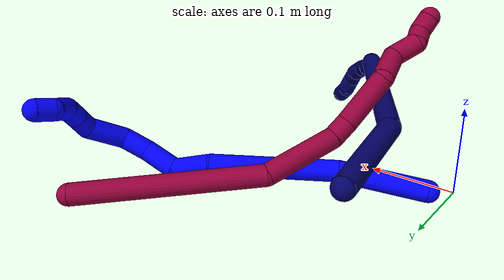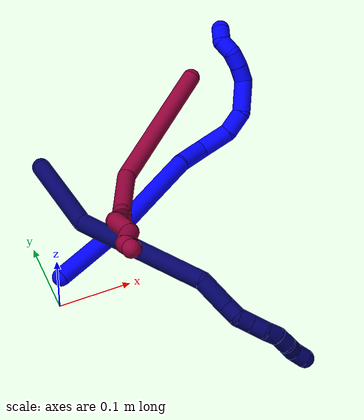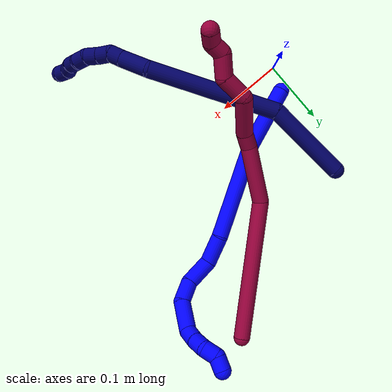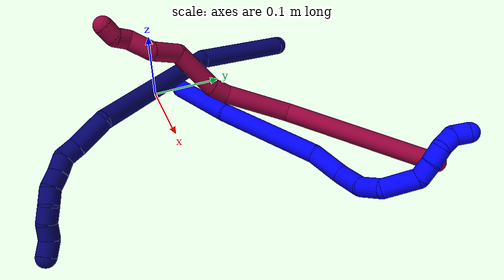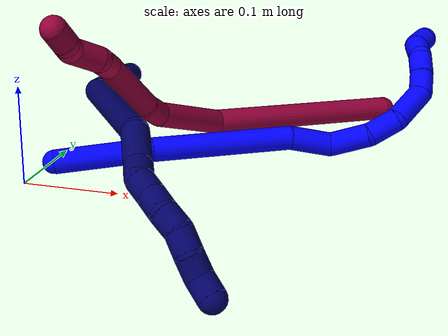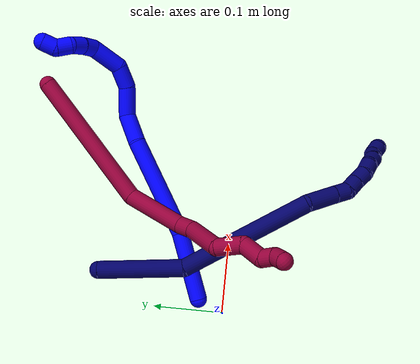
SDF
<sdf version="1.7">
 <world name="default">
  <model name="1">
   <static>0</static>
   <link name="1">
    <collision name="collision-cylinder-e_1_1_4">
     <pose>0.002131 -0.000476 0.049637 0.009592 0.042894 0.000206</pose>
     <geometry><cylinder><radius>0.0125</radius><length>0.09937</length></cylinder></geometry>
     <surface>
      <friction><ode><mu>1.16</mu><mu2>1.16</mu2><slip1>0</slip1><slip2>0</slip2></ode></friction>
      <contact><ode><kp>1e+06</kp><kd>1</kd><max_vel>0</max_vel><min_depth>0.001</min_depth></ode></contact>
     </surface>
    </collision>
    <visual name="visual-cylinder-e_1_1_4">
     <pose>0.002131 -0.000476 0.049637 0.009592 0.042894 0.000206</pose>
     <geometry><cylinder><radius>0.0125</radius><length>0.09937</length></cylinder></geometry>
     <material><ambient>0 0 1 1</ambient></material>
    </visual>
    <collision name="collision-cylinder-e_2_4_5">
     <pose>0.021795 0.003263 0.17088 -0.058793 0.239738 -0.007083</pose>
     <geometry><cylinder><radius>0.0125</radius><length>0.147684</length></cylinder></geometry>
     <surface>
      <friction><ode><mu>1.16</mu><mu2>1.16</mu2><slip1>0</slip1><slip2>0</slip2></ode></friction>
      <contact><ode><kp>1e+06</kp><kd>1</kd><max_vel>0</max_vel><min_depth>0.001</min_depth></ode></contact>
     </surface>
    </collision>
    <visual name="visual-cylinder-e_2_4_5">
     <pose>0.021795 0.003263 0.17088 -0.058793 0.239738 -0.007083</pose>
     <geometry><cylinder><radius>0.0125</radius><length>0.147684</length></cylinder></geometry>
     <material><ambient>0 0 1 1</ambient></material>
    </visual>
    <collision name="collision-cylinder-e_3_5_6">
     <pose>0.047104 0.003942 0.263298 0.16824 0.352907 0.030067</pose>
     <geometry><cylinder><radius>0.0125</radius><length>0.044993</length></cylinder></geometry>
     <surface>
      <friction><ode><mu>1.16</mu><mu2>1.16</mu2><slip1>0</slip1><slip2>0</slip2></ode></friction>
      <contact><ode><kp>1e+06</kp><kd>1</kd><max_vel>0</max_vel><min_depth>0.001</min_depth></ode></contact>
     </surface>
    </collision>
    <visual name="visual-cylinder-e_3_5_6">
     <pose>0.047104 0.003942 0.263298 0.16824 0.352907 0.030067</pose>
     <geometry><cylinder><radius>0.0125</radius><length>0.044993</length></cylinder></geometry>
     <material><ambient>0 0 1 1</ambient></material>
    </visual>
    <collision name="collision-cylinder-e_4_6_7">
     <pose>0.04862 -0.000766 0.305008 0.056111 -0.290582 -0.008212</pose>
     <geometry><cylinder><radius>0.0125</radius><length>0.043693</length></cylinder></geometry>
     <surface>
      <friction><ode><mu>1.16</mu><mu2>1.16</mu2><slip1>0</slip1><slip2>0</slip2></ode></friction>
      <contact><ode><kp>1e+06</kp><kd>1</kd><max_vel>0</max_vel><min_depth>0.001</min_depth></ode></contact>
     </surface>
    </collision>
    <visual name="visual-cylinder-e_4_6_7">
     <pose>0.04862 -0.000766 0.305008 0.056111 -0.290582 -0.008212</pose>
     <geometry><cylinder><radius>0.0125</radius><length>0.043693</length></cylinder></geometry>
     <material><ambient>0 0 1 1</ambient></material>
    </visual>
    <collision name="collision-cylinder-e_5_7_8">
     <pose>0.039744 0.003166 0.341162 -0.32296 -0.161238 0.026321</pose>
     <geometry><cylinder><radius>0.0125</radius><length>0.032598</length></cylinder></geometry>
     <surface>
      <friction><ode><mu>1.16</mu><mu2>1.16</mu2><slip1>0</slip1><slip2>0</slip2></ode></friction>
      <contact><ode><kp>1e+06</kp><kd>1</kd><max_vel>0</max_vel><min_depth>0.001</min_depth></ode></contact>
     </surface>
    </collision>
    <visual name="visual-cylinder-e_5_7_8">
     <pose>0.039744 0.003166 0.341162 -0.32296 -0.161238 0.026321</pose>
     <geometry><cylinder><radius>0.0125</radius><length>0.032598</length></cylinder></geometry>
     <material><ambient>0 0 1 1</ambient></material>
    </visual>
    <collision name="collision-cylinder-e_6_8_9">
     <pose>0.04069 0.024043 0.372691 -0.769736 0.155943 -0.063275</pose>
     <geometry><cylinder><radius>0.0125</radius><length>0.045879</length></cylinder></geometry>
     <surface>
      <friction><ode><mu>1.16</mu><mu2>1.16</mu2><slip1>0</slip1><slip2>0</slip2></ode></friction>
      <contact><ode><kp>1e+06</kp><kd>1</kd><max_vel>0</max_vel><min_depth>0.001</min_depth></ode></contact>
     </surface>
    </collision>
    <visual name="visual-cylinder-e_6_8_9">
     <pose>0.04069 0.024043 0.372691 -0.769736 0.155943 -0.063275</pose>
     <geometry><cylinder><radius>0.0125</radius><length>0.045879</length></cylinder></geometry>
     <material><ambient>0 0 1 1</ambient></material>
    </visual>
    <collision name="collision-cylinder-e_7_9_10">
     <pose>0.042472 0.050603 0.39172 -1.32071 -0.158531 0.123229</pose>
     <geometry><cylinder><radius>0.0125</radius><length>0.022555</length></cylinder></geometry>
     <surface>
      <friction><ode><mu>1.16</mu><mu2>1.16</mu2><slip1>0</slip1><slip2>0</slip2></ode></friction>
      <contact><ode><kp>1e+06</kp><kd>1</kd><max_vel>0</max_vel><min_depth>0.001</min_depth></ode></contact>
     </surface>
    </collision>
    <visual name="visual-cylinder-e_7_9_10">
     <pose>0.042472 0.050603 0.39172 -1.32071 -0.158531 0.123229</pose>
     <geometry><cylinder><radius>0.0125</radius><length>0.022555</length></cylinder></geometry>
     <material><ambient>0 0 1 1</ambient></material>
    </visual>
    <collision name="collision-cylinder-e_8_10_11">
     <pose>0.039908 0.07207 0.39578 -1.44919 -0.072723 0.064383</pose>
     <geometry><cylinder><radius>0.0125</radius><length>0.02157</length></cylinder></geometry>
     <surface>
      <friction><ode><mu>1.16</mu><mu2>1.16</mu2><slip1>0</slip1><slip2>0</slip2></ode></friction>
      <contact><ode><kp>1e+06</kp><kd>1</kd><max_vel>0</max_vel><min_depth>0.001</min_depth></ode></contact>
     </surface>
    </collision>
    <visual name="visual-cylinder-e_8_10_11">
     <pose>0.039908 0.07207 0.39578 -1.44919 -0.072723 0.064383</pose>
     <geometry><cylinder><radius>0.0125</radius><length>0.02157</length></cylinder></geometry>
     <material><ambient>0 0 1 1</ambient></material>
    </visual>
    <collision name="collision-cylinder-e_9_11_12">
     <pose>0.043675 0.09242 0.397363 -1.54211 0.43953 -0.427478</pose>
     <geometry><cylinder><radius>0.0125</radius><length>0.021385</length></cylinder></geometry>
     <surface>
      <friction><ode><mu>1.16</mu><mu2>1.16</mu2><slip1>0</slip1><slip2>0</slip2></ode></friction>
      <contact><ode><kp>1e+06</kp><kd>1</kd><max_vel>0</max_vel><min_depth>0.001</min_depth></ode></contact>
     </surface>
    </collision>
    <visual name="visual-cylinder-e_9_11_12">
     <pose>0.043675 0.09242 0.397363 -1.54211 0.43953 -0.427478</pose>
     <geometry><cylinder><radius>0.0125</radius><length>0.021385</length></cylinder></geometry>
     <material><ambient>0 0 1 1</ambient></material>
    </visual>
    <collision name="collision-cylinder-e_10_12_2">
     <pose>0.052854 0.108551 0.403933 -0.79845 0.474334 -0.203248</pose>
     <geometry><cylinder><radius>0.0125</radius><length>0.020272</length></cylinder></geometry>
     <surface>
      <friction><ode><mu>1.16</mu><mu2>1.16</mu2><slip1>0</slip1><slip2>0</slip2></ode></friction>
      <contact><ode><kp>1e+06</kp><kd>1</kd><max_vel>0</max_vel><min_depth>0.001</min_depth></ode></contact>
     </surface>
    </collision>
    <visual name="visual-cylinder-e_10_12_2">
     <pose>0.052854 0.108551 0.403933 -0.79845 0.474334 -0.203248</pose>
     <geometry><cylinder><radius>0.0125</radius><length>0.020272</length></cylinder></geometry>
     <material><ambient>0 0 1 1</ambient></material>
    </visual>
    <collision name="collision-sphere-2">
     <pose>0.057484 0.115009 0.410225 0 -0 0</pose>
     <geometry><sphere><radius>0.0125</radius></sphere></geometry>
     <surface>
      <friction><ode><mu>1.16</mu><mu2>1.16</mu2><slip1>0</slip1><slip2>0</slip2></ode></friction>
      <contact><ode><kp>1e+06</kp><kd>1</kd><max_vel>0</max_vel><min_depth>0.001</min_depth></ode></contact>
     </surface>
    </collision>
    <visual name="visual-sphere-2">
     <pose>0.057484 0.115009 0.410225 0 -0 0</pose>
     <geometry><sphere><radius>0.0125</radius></sphere></geometry>
     <material><ambient>0 0 1 1</ambient></material>
    </visual>
    <collision name="collision-sphere-12">
     <pose>0.048225 0.102092 0.39764 0 -0 0</pose>
     <geometry><sphere><radius>0.0125</radius></sphere></geometry>
     <surface>
      <friction><ode><mu>1.16</mu><mu2>1.16</mu2><slip1>0</slip1><slip2>0</slip2></ode></friction>
      <contact><ode><kp>1e+06</kp><kd>1</kd><max_vel>0</max_vel><min_depth>0.001</min_depth></ode></contact>
     </surface>
    </collision>
    <visual name="visual-sphere-12">
     <pose>0.048225 0.102092 0.39764 0 -0 0</pose>
     <geometry><sphere><radius>0.0125</radius></sphere></geometry>
     <material><ambient>0 0 1 1</ambient></material>
    </visual>
    <collision name="collision-sphere-11">
     <pose>0.039125 0.082747 0.397085 0 -0 0</pose>
     <geometry><sphere><radius>0.0125</radius></sphere></geometry>
     <surface>
      <friction><ode><mu>1.16</mu><mu2>1.16</mu2><slip1>0</slip1><slip2>0</slip2></ode></friction>
      <contact><ode><kp>1e+06</kp><kd>1</kd><max_vel>0</max_vel><min_depth>0.001</min_depth></ode></contact>
     </surface>
    </collision>
    <visual name="visual-sphere-11">
     <pose>0.039125 0.082747 0.397085 0 -0 0</pose>
     <geometry><sphere><radius>0.0125</radius></sphere></geometry>
     <material><ambient>0 0 1 1</ambient></material>
    </visual>
    <collision name="collision-sphere-10">
     <pose>0.040692 0.061393 0.394476 0 -0 0</pose>
     <geometry><sphere><radius>0.0125</radius></sphere></geometry>
     <surface>
      <friction><ode><mu>1.16</mu><mu2>1.16</mu2><slip1>0</slip1><slip2>0</slip2></ode></friction>
      <contact><ode><kp>1e+06</kp><kd>1</kd><max_vel>0</max_vel><min_depth>0.001</min_depth></ode></contact>
     </surface>
    </collision>
    <visual name="visual-sphere-10">
     <pose>0.040692 0.061393 0.394476 0 -0 0</pose>
     <geometry><sphere><radius>0.0125</radius></sphere></geometry>
     <material><ambient>0 0 1 1</ambient></material>
    </visual>
    <collision name="collision-sphere-9">
     <pose>0.044253 0.039814 0.388964 0 -0 0</pose>
     <geometry><sphere><radius>0.0125</radius></sphere></geometry>
     <surface>
      <friction><ode><mu>1.16</mu><mu2>1.16</mu2><slip1>0</slip1><slip2>0</slip2></ode></friction>
      <contact><ode><kp>1e+06</kp><kd>1</kd><max_vel>0</max_vel><min_depth>0.001</min_depth></ode></contact>
     </surface>
    </collision>
    <visual name="visual-sphere-9">
     <pose>0.044253 0.039814 0.388964 0 -0 0</pose>
     <geometry><sphere><radius>0.0125</radius></sphere></geometry>
     <material><ambient>0 0 1 1</ambient></material>
    </visual>
    <collision name="collision-sphere-4">
     <pose>0.004261 -0.000952 0.099274 0 -0 0</pose>
     <geometry><sphere><radius>0.0125</radius></sphere></geometry>
     <surface>
      <friction><ode><mu>1.16</mu><mu2>1.16</mu2><slip1>0</slip1><slip2>0</slip2></ode></friction>
      <contact><ode><kp>1e+06</kp><kd>1</kd><max_vel>0</max_vel><min_depth>0.001</min_depth></ode></contact>
     </surface>
    </collision>
    <visual name="visual-sphere-4">
     <pose>0.004261 -0.000952 0.099274 0 -0 0</pose>
     <geometry><sphere><radius>0.0125</radius></sphere></geometry>
     <material><ambient>0 0 1 1</ambient></material>
    </visual>
    <collision name="collision-sphere-1">
     <geometry><sphere><radius>0.0125</radius></sphere></geometry>
     <surface>
      <friction><ode><mu>1.16</mu><mu2>1.16</mu2><slip1>0</slip1><slip2>0</slip2></ode></friction>
      <contact><ode><kp>1e+06</kp><kd>1</kd><max_vel>0</max_vel><min_depth>0.001</min_depth></ode></contact>
     </surface>
    </collision>
    <visual name="visual-sphere-1">
     <geometry><sphere><radius>0.0125</radius></sphere></geometry>
     <material><ambient>0 0 1 1</ambient></material>
    </visual>
    <collision name="collision-sphere-8">
     <pose>0.037127 0.008272 0.356418 0 -0 0</pose>
     <geometry><sphere><radius>0.0125</radius></sphere></geometry>
     <surface>
      <friction><ode><mu>1.16</mu><mu2>1.16</mu2><slip1>0</slip1><slip2>0</slip2></ode></friction>
      <contact><ode><kp>1e+06</kp><kd>1</kd><max_vel>0</max_vel><min_depth>0.001</min_depth></ode></contact>
     </surface>
    </collision>
    <visual name="visual-sphere-8">
     <pose>0.037127 0.008272 0.356418 0 -0 0</pose>
     <geometry><sphere><radius>0.0125</radius></sphere></geometry>
     <material><ambient>0 0 1 1</ambient></material>
    </visual>
    <collision name="collision-sphere-5">
     <pose>0.039328 0.007477 0.242486 0 -0 0</pose>
     <geometry><sphere><radius>0.0125</radius></sphere></geometry>
     <surface>
      <friction><ode><mu>1.16</mu><mu2>1.16</mu2><slip1>0</slip1><slip2>0</slip2></ode></friction>
      <contact><ode><kp>1e+06</kp><kd>1</kd><max_vel>0</max_vel><min_depth>0.001</min_depth></ode></contact>
     </surface>
    </collision>
    <visual name="visual-sphere-5">
     <pose>0.039328 0.007477 0.242486 0 -0 0</pose>
     <geometry><sphere><radius>0.0125</radius></sphere></geometry>
     <material><ambient>0 0 1 1</ambient></material>
    </visual>
    <collision name="collision-sphere-6">
     <pose>0.054879 0.000408 0.28411 0 -0 0</pose>
     <geometry><sphere><radius>0.0125</radius></sphere></geometry>
     <surface>
      <friction><ode><mu>1.16</mu><mu2>1.16</mu2><slip1>0</slip1><slip2>0</slip2></ode></friction>
      <contact><ode><kp>1e+06</kp><kd>1</kd><max_vel>0</max_vel><min_depth>0.001</min_depth></ode></contact>
     </surface>
    </collision>
    <visual name="visual-sphere-6">
     <pose>0.054879 0.000408 0.28411 0 -0 0</pose>
     <geometry><sphere><radius>0.0125</radius></sphere></geometry>
     <material><ambient>0 0 1 1</ambient></material>
    </visual>
    <collision name="collision-sphere-7">
     <pose>0.042361 -0.00194 0.325906 0 -0 0</pose>
     <geometry><sphere><radius>0.0125</radius></sphere></geometry>
     <surface>
      <friction><ode><mu>1.16</mu><mu2>1.16</mu2><slip1>0</slip1><slip2>0</slip2></ode></friction>
      <contact><ode><kp>1e+06</kp><kd>1</kd><max_vel>0</max_vel><min_depth>0.001</min_depth></ode></contact>
     </surface>
    </collision>
    <visual name="visual-sphere-7">
     <pose>0.042361 -0.00194 0.325906 0 -0 0</pose>
     <geometry><sphere><radius>0.0125</radius></sphere></geometry>
     <material><ambient>0 0 1 1</ambient></material>
    </visual>
    <inertial>
     <pose>0.029322 0.017315 0.235241 0 -0 0</pose>
     <mass>0.5</mass>
     <inertia>
      <ixx>0.000391</ixx>
      <ixy>0</ixy>
      <ixz>0</ixz>
      <iyy>0.000397</iyy>
      <iyz>0</iyz>
      <izz>-6.6e-05</izz>
     </inertia>
    </inertial>
   </link>
   <pose>0.016486 0.036402 0.011498 1.35673 0.833263 1.7539</pose>
  </model>
  <model name="7">
   <static>0</static>
   <link name="7">
    <collision name="collision-cylinder-e_1_1_4">
     <pose>-0.005602 -0.015398 0.058651 0.256741 -0.092127 -0.0119</pose>
     <geometry><cylinder><radius>0.0125</radius><length>0.121793</length></cylinder></geometry>
     <surface>
      <friction><ode><mu>1.16</mu><mu2>1.16</mu2><slip1>0</slip1><slip2>0</slip2></ode></friction>
      <contact><ode><kp>1e+06</kp><kd>1</kd><max_vel>0</max_vel><min_depth>0.001</min_depth></ode></contact>
     </surface>
    </collision>
    <visual name="visual-cylinder-e_1_1_4">
     <pose>-0.005602 -0.015398 0.058651 0.256741 -0.092127 -0.0119</pose>
     <geometry><cylinder><radius>0.0125</radius><length>0.121793</length></cylinder></geometry>
     <material><ambient>0.003922 0 0.403922 1</ambient></material>
    </visual>
    <collision name="collision-cylinder-e_2_4_5">
     <pose>-0.006566 -0.092481 0.191405 0.694201 0.048068 0.017392</pose>
     <geometry><cylinder><radius>0.0125</radius><length>0.19306</length></cylinder></geometry>
     <surface>
      <friction><ode><mu>1.16</mu><mu2>1.16</mu2><slip1>0</slip1><slip2>0</slip2></ode></friction>
      <contact><ode><kp>1e+06</kp><kd>1</kd><max_vel>0</max_vel><min_depth>0.001</min_depth></ode></contact>
     </surface>
    </collision>
    <visual name="visual-cylinder-e_2_4_5">
     <pose>-0.006566 -0.092481 0.191405 0.694201 0.048068 0.017392</pose>
     <geometry><cylinder><radius>0.0125</radius><length>0.19306</length></cylinder></geometry>
     <material><ambient>0.003922 0 0.403922 1</ambient></material>
    </visual>
    <collision name="collision-cylinder-e_3_5_6">
     <pose>-0.011198 -0.168007 0.280584 0.742697 -0.425355 -0.167788</pose>
     <geometry><cylinder><radius>0.0125</radius><length>0.044931</length></cylinder></geometry>
     <surface>
      <friction><ode><mu>1.16</mu><mu2>1.16</mu2><slip1>0</slip1><slip2>0</slip2></ode></friction>
      <contact><ode><kp>1e+06</kp><kd>1</kd><max_vel>0</max_vel><min_depth>0.001</min_depth></ode></contact>
     </surface>
    </collision>
    <visual name="visual-cylinder-e_3_5_6">
     <pose>-0.011198 -0.168007 0.280584 0.742697 -0.425355 -0.167788</pose>
     <geometry><cylinder><radius>0.0125</radius><length>0.044931</length></cylinder></geometry>
     <material><ambient>0.003922 0 0.403922 1</ambient></material>
    </visual>
    <collision name="collision-cylinder-e_4_6_7">
     <pose>-0.023707 -0.187747 0.303106 0.670074 -0.328437 -0.115261</pose>
     <geometry><cylinder><radius>0.0125</radius><length>0.020078</length></cylinder></geometry>
     <surface>
      <friction><ode><mu>1.16</mu><mu2>1.16</mu2><slip1>0</slip1><slip2>0</slip2></ode></friction>
      <contact><ode><kp>1e+06</kp><kd>1</kd><max_vel>0</max_vel><min_depth>0.001</min_depth></ode></contact>
     </surface>
    </collision>
    <visual name="visual-cylinder-e_4_6_7">
     <pose>-0.023707 -0.187747 0.303106 0.670074 -0.328437 -0.115261</pose>
     <geometry><cylinder><radius>0.0125</radius><length>0.020078</length></cylinder></geometry>
     <material><ambient>0.003922 0 0.403922 1</ambient></material>
    </visual>
    <collision name="collision-cylinder-e_5_7_8">
     <pose>-0.029941 -0.202706 0.313754 1.2312 -0.302322 -0.214643</pose>
     <geometry><cylinder><radius>0.0125</radius><length>0.020124</length></cylinder></geometry>
     <surface>
      <friction><ode><mu>1.16</mu><mu2>1.16</mu2><slip1>0</slip1><slip2>0</slip2></ode></friction>
      <contact><ode><kp>1e+06</kp><kd>1</kd><max_vel>0</max_vel><min_depth>0.001</min_depth></ode></contact>
     </surface>
    </collision>
    <visual name="visual-cylinder-e_5_7_8">
     <pose>-0.029941 -0.202706 0.313754 1.2312 -0.302322 -0.214643</pose>
     <geometry><cylinder><radius>0.0125</radius><length>0.020124</length></cylinder></geometry>
     <material><ambient>0.003922 0 0.403922 1</ambient></material>
    </visual>
    <collision name="collision-cylinder-e_6_8_9">
     <pose>-0.035594 -0.22049 0.321056 1.13131 -0.268898 -0.171327</pose>
     <geometry><cylinder><radius>0.0125</radius><length>0.020005</length></cylinder></geometry>
     <surface>
      <friction><ode><mu>1.16</mu><mu2>1.16</mu2><slip1>0</slip1><slip2>0</slip2></ode></friction>
      <contact><ode><kp>1e+06</kp><kd>1</kd><max_vel>0</max_vel><min_depth>0.001</min_depth></ode></contact>
     </surface>
    </collision>
    <visual name="visual-cylinder-e_6_8_9">
     <pose>-0.035594 -0.22049 0.321056 1.13131 -0.268898 -0.171327</pose>
     <geometry><cylinder><radius>0.0125</radius><length>0.020005</length></cylinder></geometry>
     <material><ambient>0.003922 0 0.403922 1</ambient></material>
    </visual>
    <collision name="collision-cylinder-e_7_9_10">
     <pose>-0.04198 -0.238463 0.325958 1.48465 -0.382013 -0.351118</pose>
     <geometry><cylinder><radius>0.0125</radius><length>0.020004</length></cylinder></geometry>
     <surface>
      <friction><ode><mu>1.16</mu><mu2>1.16</mu2><slip1>0</slip1><slip2>0</slip2></ode></friction>
      <contact><ode><kp>1e+06</kp><kd>1</kd><max_vel>0</max_vel><min_depth>0.001</min_depth></ode></contact>
     </surface>
    </collision>
    <visual name="visual-cylinder-e_7_9_10">
     <pose>-0.04198 -0.238463 0.325958 1.48465 -0.382013 -0.351118</pose>
     <geometry><cylinder><radius>0.0125</radius><length>0.020004</length></cylinder></geometry>
     <material><ambient>0.003922 0 0.403922 1</ambient></material>
    </visual>
    <collision name="collision-cylinder-e_8_10_11">
     <pose>-0.052143 -0.255341 0.327371 1.49041 -0.698894 -0.648702</pose>
     <geometry><cylinder><radius>0.0125</radius><length>0.020001</length></cylinder></geometry>
     <surface>
      <friction><ode><mu>1.16</mu><mu2>1.16</mu2><slip1>0</slip1><slip2>0</slip2></ode></friction>
      <contact><ode><kp>1e+06</kp><kd>1</kd><max_vel>0</max_vel><min_depth>0.001</min_depth></ode></contact>
     </surface>
    </collision>
    <visual name="visual-cylinder-e_8_10_11">
     <pose>-0.052143 -0.255341 0.327371 1.49041 -0.698894 -0.648702</pose>
     <geometry><cylinder><radius>0.0125</radius><length>0.020001</length></cylinder></geometry>
     <material><ambient>0.003922 0 0.403922 1</ambient></material>
    </visual>
    <collision name="collision-cylinder-e_9_11_12">
     <pose>-0.065593 -0.269716 0.325678 1.90049 -0.777438 -1.04068</pose>
     <geometry><cylinder><radius>0.0125</radius><length>0.020003</length></cylinder></geometry>
     <surface>
      <friction><ode><mu>1.16</mu><mu2>1.16</mu2><slip1>0</slip1><slip2>0</slip2></ode></friction>
      <contact><ode><kp>1e+06</kp><kd>1</kd><max_vel>0</max_vel><min_depth>0.001</min_depth></ode></contact>
     </surface>
    </collision>
    <visual name="visual-cylinder-e_9_11_12">
     <pose>-0.065593 -0.269716 0.325678 1.90049 -0.777438 -1.04068</pose>
     <geometry><cylinder><radius>0.0125</radius><length>0.020003</length></cylinder></geometry>
     <material><ambient>0.003922 0 0.403922 1</ambient></material>
    </visual>
    <collision name="collision-cylinder-e_10_12_2">
     <pose>-0.077387 -0.285112 0.324894 1.39652 -0.498178 -0.420681</pose>
     <geometry><cylinder><radius>0.0125</radius><length>0.02</length></cylinder></geometry>
     <surface>
      <friction><ode><mu>1.16</mu><mu2>1.16</mu2><slip1>0</slip1><slip2>0</slip2></ode></friction>
      <contact><ode><kp>1e+06</kp><kd>1</kd><max_vel>0</max_vel><min_depth>0.001</min_depth></ode></contact>
     </surface>
    </collision>
    <visual name="visual-cylinder-e_10_12_2">
     <pose>-0.077387 -0.285112 0.324894 1.39652 -0.498178 -0.420681</pose>
     <geometry><cylinder><radius>0.0125</radius><length>0.02</length></cylinder></geometry>
     <material><ambient>0.003922 0 0.403922 1</ambient></material>
    </visual>
    <collision name="collision-sphere-2">
     <pose>-0.082165 -0.293764 0.326417 0 -0 0</pose>
     <geometry><sphere><radius>0.0125</radius></sphere></geometry>
     <surface>
      <friction><ode><mu>1.16</mu><mu2>1.16</mu2><slip1>0</slip1><slip2>0</slip2></ode></friction>
      <contact><ode><kp>1e+06</kp><kd>1</kd><max_vel>0</max_vel><min_depth>0.001</min_depth></ode></contact>
     </surface>
    </collision>
    <visual name="visual-sphere-2">
     <pose>-0.082165 -0.293764 0.326417 0 -0 0</pose>
     <geometry><sphere><radius>0.0125</radius></sphere></geometry>
     <material><ambient>0.003922 0 0.403922 1</ambient></material>
    </visual>
    <collision name="collision-sphere-12">
     <pose>-0.072608 -0.276461 0.32337 0 -0 0</pose>
     <geometry><sphere><radius>0.0125</radius></sphere></geometry>
     <surface>
      <friction><ode><mu>1.16</mu><mu2>1.16</mu2><slip1>0</slip1><slip2>0</slip2></ode></friction>
      <contact><ode><kp>1e+06</kp><kd>1</kd><max_vel>0</max_vel><min_depth>0.001</min_depth></ode></contact>
     </surface>
    </collision>
    <visual name="visual-sphere-12">
     <pose>-0.072608 -0.276461 0.32337 0 -0 0</pose>
     <geometry><sphere><radius>0.0125</radius></sphere></geometry>
     <material><ambient>0.003922 0 0.403922 1</ambient></material>
    </visual>
    <collision name="collision-sphere-11">
     <pose>-0.058577 -0.262972 0.327986 0 -0 0</pose>
     <geometry><sphere><radius>0.0125</radius></sphere></geometry>
     <surface>
      <friction><ode><mu>1.16</mu><mu2>1.16</mu2><slip1>0</slip1><slip2>0</slip2></ode></friction>
      <contact><ode><kp>1e+06</kp><kd>1</kd><max_vel>0</max_vel><min_depth>0.001</min_depth></ode></contact>
     </surface>
    </collision>
    <visual name="visual-sphere-11">
     <pose>-0.058577 -0.262972 0.327986 0 -0 0</pose>
     <geometry><sphere><radius>0.0125</radius></sphere></geometry>
     <material><ambient>0.003922 0 0.403922 1</ambient></material>
    </visual>
    <collision name="collision-sphere-10">
     <pose>-0.045709 -0.247709 0.326756 0 -0 0</pose>
     <geometry><sphere><radius>0.0125</radius></sphere></geometry>
     <surface>
      <friction><ode><mu>1.16</mu><mu2>1.16</mu2><slip1>0</slip1><slip2>0</slip2></ode></friction>
      <contact><ode><kp>1e+06</kp><kd>1</kd><max_vel>0</max_vel><min_depth>0.001</min_depth></ode></contact>
     </surface>
    </collision>
    <visual name="visual-sphere-10">
     <pose>-0.045709 -0.247709 0.326756 0 -0 0</pose>
     <geometry><sphere><radius>0.0125</radius></sphere></geometry>
     <material><ambient>0.003922 0 0.403922 1</ambient></material>
    </visual>
    <collision name="collision-sphere-9">
     <pose>-0.038252 -0.229217 0.325159 0 -0 0</pose>
     <geometry><sphere><radius>0.0125</radius></sphere></geometry>
     <surface>
      <friction><ode><mu>1.16</mu><mu2>1.16</mu2><slip1>0</slip1><slip2>0</slip2></ode></friction>
      <contact><ode><kp>1e+06</kp><kd>1</kd><max_vel>0</max_vel><min_depth>0.001</min_depth></ode></contact>
     </surface>
    </collision>
    <visual name="visual-sphere-9">
     <pose>-0.038252 -0.229217 0.325159 0 -0 0</pose>
     <geometry><sphere><radius>0.0125</radius></sphere></geometry>
     <material><ambient>0.003922 0 0.403922 1</ambient></material>
    </visual>
    <collision name="collision-sphere-4">
     <pose>-0.011205 -0.030796 0.117301 0 -0 0</pose>
     <geometry><sphere><radius>0.0125</radius></sphere></geometry>
     <surface>
      <friction><ode><mu>1.16</mu><mu2>1.16</mu2><slip1>0</slip1><slip2>0</slip2></ode></friction>
      <contact><ode><kp>1e+06</kp><kd>1</kd><max_vel>0</max_vel><min_depth>0.001</min_depth></ode></contact>
     </surface>
    </collision>
    <visual name="visual-sphere-4">
     <pose>-0.011205 -0.030796 0.117301 0 -0 0</pose>
     <geometry><sphere><radius>0.0125</radius></sphere></geometry>
     <material><ambient>0.003922 0 0.403922 1</ambient></material>
    </visual>
    <collision name="collision-sphere-1">
     <geometry><sphere><radius>0.0125</radius></sphere></geometry>
     <surface>
      <friction><ode><mu>1.16</mu><mu2>1.16</mu2><slip1>0</slip1><slip2>0</slip2></ode></friction>
      <contact><ode><kp>1e+06</kp><kd>1</kd><max_vel>0</max_vel><min_depth>0.001</min_depth></ode></contact>
     </surface>
    </collision>
    <visual name="visual-sphere-1">
     <geometry><sphere><radius>0.0125</radius></sphere></geometry>
     <material><ambient>0.003922 0 0.403922 1</ambient></material>
    </visual>
    <collision name="collision-sphere-8">
     <pose>-0.032937 -0.211763 0.316953 0 -0 0</pose>
     <geometry><sphere><radius>0.0125</radius></sphere></geometry>
     <surface>
      <friction><ode><mu>1.16</mu><mu2>1.16</mu2><slip1>0</slip1><slip2>0</slip2></ode></friction>
      <contact><ode><kp>1e+06</kp><kd>1</kd><max_vel>0</max_vel><min_depth>0.001</min_depth></ode></contact>
     </surface>
    </collision>
    <visual name="visual-sphere-8">
     <pose>-0.032937 -0.211763 0.316953 0 -0 0</pose>
     <geometry><sphere><radius>0.0125</radius></sphere></geometry>
     <material><ambient>0.003922 0 0.403922 1</ambient></material>
    </visual>
    <collision name="collision-sphere-5">
     <pose>-0.001928 -0.154167 0.265509 0 -0 0</pose>
     <geometry><sphere><radius>0.0125</radius></sphere></geometry>
     <surface>
      <friction><ode><mu>1.16</mu><mu2>1.16</mu2><slip1>0</slip1><slip2>0</slip2></ode></friction>
      <contact><ode><kp>1e+06</kp><kd>1</kd><max_vel>0</max_vel><min_depth>0.001</min_depth></ode></contact>
     </surface>
    </collision>
    <visual name="visual-sphere-5">
     <pose>-0.001928 -0.154167 0.265509 0 -0 0</pose>
     <geometry><sphere><radius>0.0125</radius></sphere></geometry>
     <material><ambient>0.003922 0 0.403922 1</ambient></material>
    </visual>
    <collision name="collision-sphere-6">
     <pose>-0.020469 -0.181846 0.295658 0 -0 0</pose>
     <geometry><sphere><radius>0.0125</radius></sphere></geometry>
     <surface>
      <friction><ode><mu>1.16</mu><mu2>1.16</mu2><slip1>0</slip1><slip2>0</slip2></ode></friction>
      <contact><ode><kp>1e+06</kp><kd>1</kd><max_vel>0</max_vel><min_depth>0.001</min_depth></ode></contact>
     </surface>
    </collision>
    <visual name="visual-sphere-6">
     <pose>-0.020469 -0.181846 0.295658 0 -0 0</pose>
     <geometry><sphere><radius>0.0125</radius></sphere></geometry>
     <material><ambient>0.003922 0 0.403922 1</ambient></material>
    </visual>
    <collision name="collision-sphere-7">
     <pose>-0.026945 -0.193649 0.310554 0 -0 0</pose>
     <geometry><sphere><radius>0.0125</radius></sphere></geometry>
     <surface>
      <friction><ode><mu>1.16</mu><mu2>1.16</mu2><slip1>0</slip1><slip2>0</slip2></ode></friction>
      <contact><ode><kp>1e+06</kp><kd>1</kd><max_vel>0</max_vel><min_depth>0.001</min_depth></ode></contact>
     </surface>
    </collision>
    <visual name="visual-sphere-7">
     <pose>-0.026945 -0.193649 0.310554 0 -0 0</pose>
     <geometry><sphere><radius>0.0125</radius></sphere></geometry>
     <material><ambient>0.003922 0 0.403922 1</ambient></material>
    </visual>
    <inertial>
     <pose>-0.017972 -0.121026 0.203212 0 -0 0</pose>
     <mass>0.5</mass>
     <inertia><ixx>0.000775</ixx><ixy>0</ixy><ixz>0</ixz><iyy>0.00061</iyy><iyz>0</iyz><izz>0.00046</izz></inertia>
    </inertial>
   </link>
   <pose>0.043731 0.179437 0.067141 0.724296 -1.16269 0.696102</pose>
  </model>
  <model name="8">
   <static>0</static>
   <link name="8">
    <collision name="collision-cylinder-e_1_1_4">
     <pose>-0.035237 -0.021047 -0.096933 2.92778 -0.341336 -2.02773</pose>
     <geometry><cylinder><radius>0.0125</radius><length>0.210529</length></cylinder></geometry>
     <surface>
      <friction><ode><mu>1.16</mu><mu2>1.16</mu2><slip1>0</slip1><slip2>0</slip2></ode></friction>
      <contact><ode><kp>1e+06</kp><kd>1</kd><max_vel>0</max_vel><min_depth>0.001</min_depth></ode></contact>
     </surface>
    </collision>
    <visual name="visual-cylinder-e_1_1_4">
     <pose>-0.035237 -0.021047 -0.096933 2.92778 -0.341336 -2.02773</pose>
     <geometry><cylinder><radius>0.0125</radius><length>0.210529</length></cylinder></geometry>
     <material><ambient>0.584314 0 0.227451 1</ambient></material>
    </visual>
    <collision name="collision-cylinder-e_2_4_5">
     <pose>-0.080162 -0.068617 -0.227424 2.47278 -0.222731 -0.622759</pose>
     <geometry><cylinder><radius>0.0125</radius><length>0.087715</length></cylinder></geometry>
     <surface>
      <friction><ode><mu>1.16</mu><mu2>1.16</mu2><slip1>0</slip1><slip2>0</slip2></ode></friction>
      <contact><ode><kp>1e+06</kp><kd>1</kd><max_vel>0</max_vel><min_depth>0.001</min_depth></ode></contact>
     </surface>
    </collision>
    <visual name="visual-cylinder-e_2_4_5">
     <pose>-0.080162 -0.068617 -0.227424 2.47278 -0.222731 -0.622759</pose>
     <geometry><cylinder><radius>0.0125</radius><length>0.087715</length></cylinder></geometry>
     <material><ambient>0.584314 0 0.227451 1</ambient></material>
    </visual>
    <collision name="collision-cylinder-e_3_5_6">
     <pose>-0.093329 -0.104547 -0.267416 2.17049 -0.29634 -0.551325</pose>
     <geometry><cylinder><radius>0.0125</radius><length>0.023833</length></cylinder></geometry>
     <surface>
      <friction><ode><mu>1.16</mu><mu2>1.16</mu2><slip1>0</slip1><slip2>0</slip2></ode></friction>
      <contact><ode><kp>1e+06</kp><kd>1</kd><max_vel>0</max_vel><min_depth>0.001</min_depth></ode></contact>
     </surface>
    </collision>
    <visual name="visual-cylinder-e_3_5_6">
     <pose>-0.093329 -0.104547 -0.267416 2.17049 -0.29634 -0.551325</pose>
     <geometry><cylinder><radius>0.0125</radius><length>0.023833</length></cylinder></geometry>
     <material><ambient>0.584314 0 0.227451 1</ambient></material>
    </visual>
    <collision name="collision-cylinder-e_4_6_7">
     <pose>-0.115072 -0.137551 -0.286267 2.05529 -0.600546 -0.947794</pose>
     <geometry><cylinder><radius>0.0125</radius><length>0.064638</length></cylinder></geometry>
     <surface>
      <friction><ode><mu>1.16</mu><mu2>1.16</mu2><slip1>0</slip1><slip2>0</slip2></ode></friction>
      <contact><ode><kp>1e+06</kp><kd>1</kd><max_vel>0</max_vel><min_depth>0.001</min_depth></ode></contact>
     </surface>
    </collision>
    <visual name="visual-cylinder-e_4_6_7">
     <pose>-0.115072 -0.137551 -0.286267 2.05529 -0.600546 -0.947794</pose>
     <geometry><cylinder><radius>0.0125</radius><length>0.064638</length></cylinder></geometry>
     <material><ambient>0.584314 0 0.227451 1</ambient></material>
    </visual>
    <collision name="collision-cylinder-e_5_7_8">
     <pose>-0.130936 -0.179273 -0.306851 1.99402 0.120102 0.185513</pose>
     <geometry><cylinder><radius>0.0125</radius><length>0.040049</length></cylinder></geometry>
     <surface>
      <friction><ode><mu>1.16</mu><mu2>1.16</mu2><slip1>0</slip1><slip2>0</slip2></ode></friction>
      <contact><ode><kp>1e+06</kp><kd>1</kd><max_vel>0</max_vel><min_depth>0.001</min_depth></ode></contact>
     </surface>
    </collision>
    <visual name="visual-cylinder-e_5_7_8">
     <pose>-0.130936 -0.179273 -0.306851 1.99402 0.120102 0.185513</pose>
     <geometry><cylinder><radius>0.0125</radius><length>0.040049</length></cylinder></geometry>
     <material><ambient>0.584314 0 0.227451 1</ambient></material>
    </visual>
    <collision name="collision-cylinder-e_6_8_9">
     <pose>-0.134816 -0.206722 -0.326815 2.47287 -0.39552 -1.04635</pose>
     <geometry><cylinder><radius>0.0125</radius><length>0.032593</length></cylinder></geometry>
     <surface>
      <friction><ode><mu>1.16</mu><mu2>1.16</mu2><slip1>0</slip1><slip2>0</slip2></ode></friction>
      <contact><ode><kp>1e+06</kp><kd>1</kd><max_vel>0</max_vel><min_depth>0.001</min_depth></ode></contact>
     </surface>
    </collision>
    <visual name="visual-cylinder-e_6_8_9">
     <pose>-0.134816 -0.206722 -0.326815 2.47287 -0.39552 -1.04635</pose>
     <geometry><cylinder><radius>0.0125</radius><length>0.032593</length></cylinder></geometry>
     <material><ambient>0.584314 0 0.227451 1</ambient></material>
    </visual>
    <collision name="collision-cylinder-e_7_9_10">
     <pose>-0.14027 -0.22577 -0.341931 1.89945 0.080117 0.111912</pose>
     <geometry><cylinder><radius>0.0125</radius><length>0.020613</length></cylinder></geometry>
     <surface>
      <friction><ode><mu>1.16</mu><mu2>1.16</mu2><slip1>0</slip1><slip2>0</slip2></ode></friction>
      <contact><ode><kp>1e+06</kp><kd>1</kd><max_vel>0</max_vel><min_depth>0.001</min_depth></ode></contact>
     </surface>
    </collision>
    <visual name="visual-cylinder-e_7_9_10">
     <pose>-0.14027 -0.22577 -0.341931 1.89945 0.080117 0.111912</pose>
     <geometry><cylinder><radius>0.0125</radius><length>0.020613</length></cylinder></geometry>
     <material><ambient>0.584314 0 0.227451 1</ambient></material>
    </visual>
    <collision name="collision-cylinder-e_8_10_2">
     <pose>-0.144908 -0.243276 -0.34839 1.9546 -0.576995 -0.82886</pose>
     <geometry><cylinder><radius>0.0125</radius><length>0.02003</length></cylinder></geometry>
     <surface>
      <friction><ode><mu>1.16</mu><mu2>1.16</mu2><slip1>0</slip1><slip2>0</slip2></ode></friction>
      <contact><ode><kp>1e+06</kp><kd>1</kd><max_vel>0</max_vel><min_depth>0.001</min_depth></ode></contact>
     </surface>
    </collision>
    <visual name="visual-cylinder-e_8_10_2">
     <pose>-0.144908 -0.243276 -0.34839 1.9546 -0.576995 -0.82886</pose>
     <geometry><cylinder><radius>0.0125</radius><length>0.02003</length></cylinder></geometry>
     <material><ambient>0.584314 0 0.227451 1</ambient></material>
    </visual>
    <collision name="collision-sphere-2">
     <pose>-0.150372 -0.251059 -0.351533 0 -0 0</pose>
     <geometry><sphere><radius>0.0125</radius></sphere></geometry>
     <surface>
      <friction><ode><mu>1.16</mu><mu2>1.16</mu2><slip1>0</slip1><slip2>0</slip2></ode></friction>
      <contact><ode><kp>1e+06</kp><kd>1</kd><max_vel>0</max_vel><min_depth>0.001</min_depth></ode></contact>
     </surface>
    </collision>
    <visual name="visual-sphere-2">
     <pose>-0.150372 -0.251059 -0.351533 0 -0 0</pose>
     <geometry><sphere><radius>0.0125</radius></sphere></geometry>
     <material><ambient>0.584314 0 0.227451 1</ambient></material>
    </visual>
    <collision name="collision-sphere-10">
     <pose>-0.139445 -0.235493 -0.345247 0 -0 0</pose>
     <geometry><sphere><radius>0.0125</radius></sphere></geometry>
     <surface>
      <friction><ode><mu>1.16</mu><mu2>1.16</mu2><slip1>0</slip1><slip2>0</slip2></ode></friction>
      <contact><ode><kp>1e+06</kp><kd>1</kd><max_vel>0</max_vel><min_depth>0.001</min_depth></ode></contact>
     </surface>
    </collision>
    <visual name="visual-sphere-10">
     <pose>-0.139445 -0.235493 -0.345247 0 -0 0</pose>
     <geometry><sphere><radius>0.0125</radius></sphere></geometry>
     <material><ambient>0.584314 0 0.227451 1</ambient></material>
    </visual>
    <collision name="collision-sphere-9">
     <pose>-0.141095 -0.216046 -0.338615 0 -0 0</pose>
     <geometry><sphere><radius>0.0125</radius></sphere></geometry>
     <surface>
      <friction><ode><mu>1.16</mu><mu2>1.16</mu2><slip1>0</slip1><slip2>0</slip2></ode></friction>
      <contact><ode><kp>1e+06</kp><kd>1</kd><max_vel>0</max_vel><min_depth>0.001</min_depth></ode></contact>
     </surface>
    </collision>
    <visual name="visual-sphere-9">
     <pose>-0.141095 -0.216046 -0.338615 0 -0 0</pose>
     <geometry><sphere><radius>0.0125</radius></sphere></geometry>
     <material><ambient>0.584314 0 0.227451 1</ambient></material>
    </visual>
    <collision name="collision-sphere-4">
     <pose>-0.070474 -0.042094 -0.193866 0 -0 0</pose>
     <geometry><sphere><radius>0.0125</radius></sphere></geometry>
     <surface>
      <friction><ode><mu>1.16</mu><mu2>1.16</mu2><slip1>0</slip1><slip2>0</slip2></ode></friction>
      <contact><ode><kp>1e+06</kp><kd>1</kd><max_vel>0</max_vel><min_depth>0.001</min_depth></ode></contact>
     </surface>
    </collision>
    <visual name="visual-sphere-4">
     <pose>-0.070474 -0.042094 -0.193866 0 -0 0</pose>
     <geometry><sphere><radius>0.0125</radius></sphere></geometry>
     <material><ambient>0.584314 0 0.227451 1</ambient></material>
    </visual>
    <collision name="collision-sphere-1">
     <geometry><sphere><radius>0.0125</radius></sphere></geometry>
     <surface>
      <friction><ode><mu>1.16</mu><mu2>1.16</mu2><slip1>0</slip1><slip2>0</slip2></ode></friction>
      <contact><ode><kp>1e+06</kp><kd>1</kd><max_vel>0</max_vel><min_depth>0.001</min_depth></ode></contact>
     </surface>
    </collision>
    <visual name="visual-sphere-1">
     <geometry><sphere><radius>0.0125</radius></sphere></geometry>
     <material><ambient>0.584314 0 0.227451 1</ambient></material>
    </visual>
    <collision name="collision-sphere-8">
     <pose>-0.128537 -0.197399 -0.315016 0 -0 0</pose>
     <geometry><sphere><radius>0.0125</radius></sphere></geometry>
     <surface>
      <friction><ode><mu>1.16</mu><mu2>1.16</mu2><slip1>0</slip1><slip2>0</slip2></ode></friction>
      <contact><ode><kp>1e+06</kp><kd>1</kd><max_vel>0</max_vel><min_depth>0.001</min_depth></ode></contact>
     </surface>
    </collision>
    <visual name="visual-sphere-8">
     <pose>-0.128537 -0.197399 -0.315016 0 -0 0</pose>
     <geometry><sphere><radius>0.0125</radius></sphere></geometry>
     <material><ambient>0.584314 0 0.227451 1</ambient></material>
    </visual>
    <collision name="collision-sphere-5">
     <pose>-0.089849 -0.095139 -0.260983 0 -0 0</pose>
     <geometry><sphere><radius>0.0125</radius></sphere></geometry>
     <surface>
      <friction><ode><mu>1.16</mu><mu2>1.16</mu2><slip1>0</slip1><slip2>0</slip2></ode></friction>
      <contact><ode><kp>1e+06</kp><kd>1</kd><max_vel>0</max_vel><min_depth>0.001</min_depth></ode></contact>
     </surface>
    </collision>
    <visual name="visual-sphere-5">
     <pose>-0.089849 -0.095139 -0.260983 0 -0 0</pose>
     <geometry><sphere><radius>0.0125</radius></sphere></geometry>
     <material><ambient>0.584314 0 0.227451 1</ambient></material>
    </visual>
    <collision name="collision-sphere-6">
     <pose>-0.096809 -0.113956 -0.273848 0 -0 0</pose>
     <geometry><sphere><radius>0.0125</radius></sphere></geometry>
     <surface>
      <friction><ode><mu>1.16</mu><mu2>1.16</mu2><slip1>0</slip1><slip2>0</slip2></ode></friction>
      <contact><ode><kp>1e+06</kp><kd>1</kd><max_vel>0</max_vel><min_depth>0.001</min_depth></ode></contact>
     </surface>
    </collision>
    <visual name="visual-sphere-6">
     <pose>-0.096809 -0.113956 -0.273848 0 -0 0</pose>
     <geometry><sphere><radius>0.0125</radius></sphere></geometry>
     <material><ambient>0.584314 0 0.227451 1</ambient></material>
    </visual>
    <collision name="collision-sphere-7">
     <pose>-0.133336 -0.161146 -0.298686 0 -0 0</pose>
     <geometry><sphere><radius>0.0125</radius></sphere></geometry>
     <surface>
      <friction><ode><mu>1.16</mu><mu2>1.16</mu2><slip1>0</slip1><slip2>0</slip2></ode></friction>
      <contact><ode><kp>1e+06</kp><kd>1</kd><max_vel>0</max_vel><min_depth>0.001</min_depth></ode></contact>
     </surface>
    </collision>
    <visual name="visual-sphere-7">
     <pose>-0.133336 -0.161146 -0.298686 0 -0 0</pose>
     <geometry><sphere><radius>0.0125</radius></sphere></geometry>
     <material><ambient>0.584314 0 0.227451 1</ambient></material>
    </visual>
    <inertial>
     <pose>-0.079088 -0.090553 -0.2044 0 -0 0</pose>
     <mass>0.5</mass>
     <inertia>
      <ixx>-0.000985</ixx>
      <ixy>0</ixy>
      <ixz>0</ixz>
      <iyy>-0.000384</iyy>
      <iyz>0</iyz>
      <izz>0.000489</izz>
     </inertia>
    </inertial>
   </link>
   <pose>0.308856 0.288501 0.018337 -1.14323 0.713854 -0.434239</pose>
  </model>
 </world>
</sdf>
